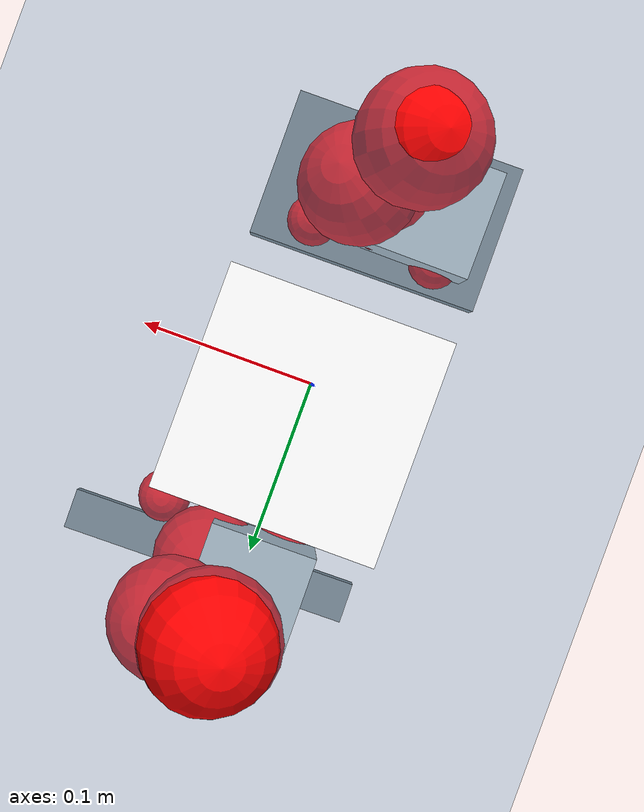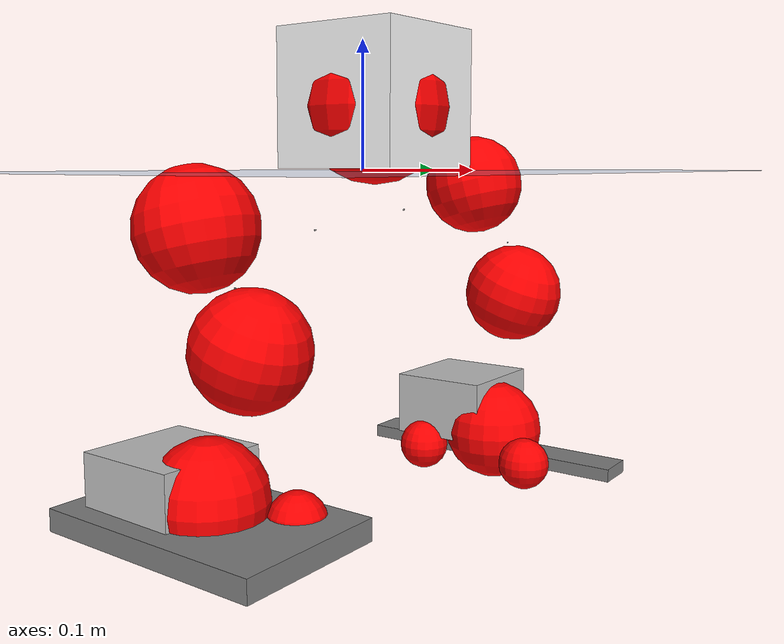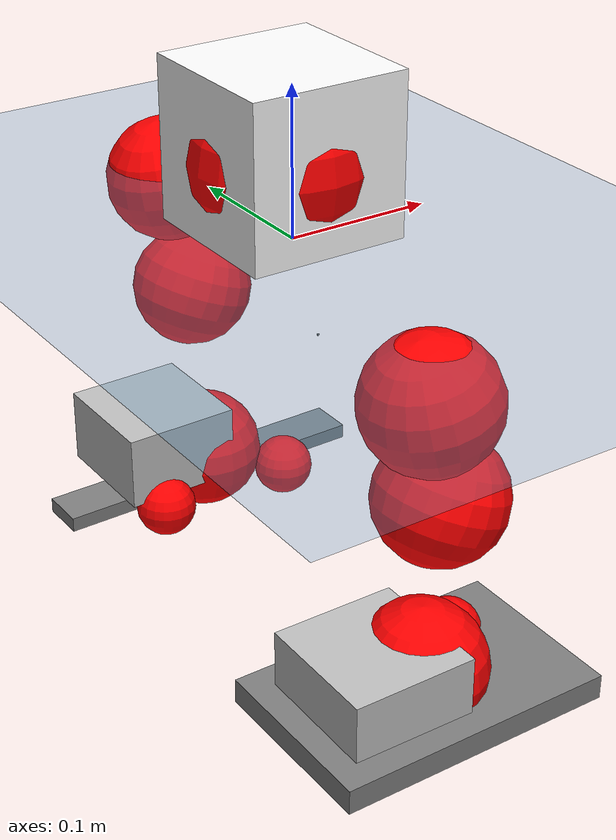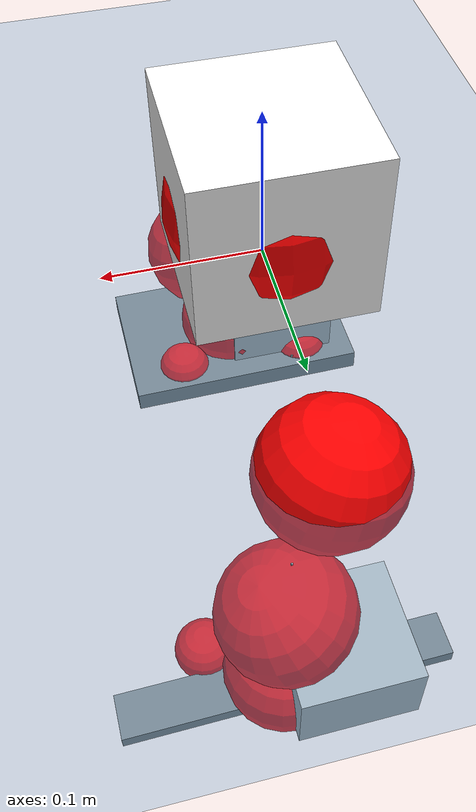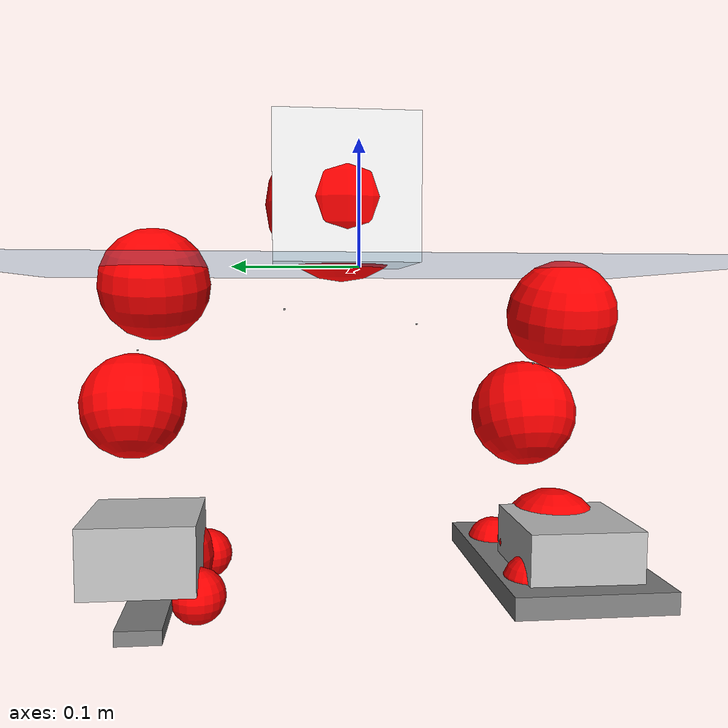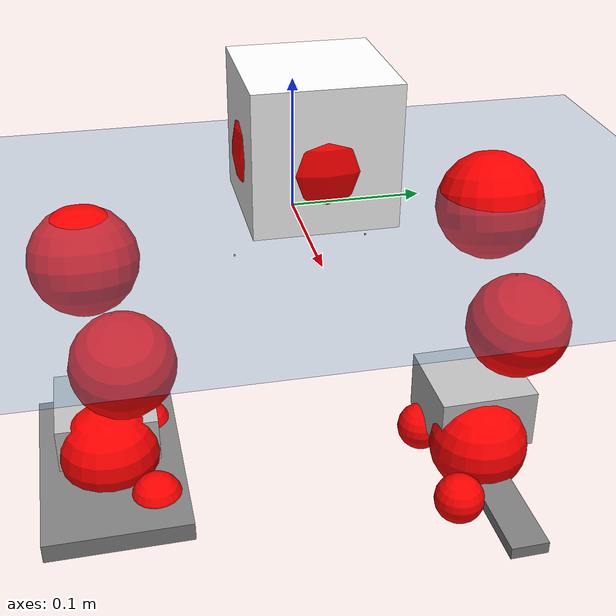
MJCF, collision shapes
<mujoco model="pi_12dof_release_v1">
  <compiler angle="radian" assetdir="assets" balanceinertia="true" inertiafromgeom="false"/>

  <option timestep="0.005" density="1.2" viscosity="2e-05"/>

  <size nkey="1"/>

  <visual>
    <quality shadowsize="8192"/>
    <map shadowclip="0.5"/>
  </visual>

  <default>
    <default class="/">
      <joint armature="0.01" damping="0.01" frictionloss="0.01"/>
      <geom contype="0" conaffinity="0" group="1" solref="-1000 -80"/>
      <site size="0.01 0.005 0.005" group="5"/>
      <general forcelimited="true" biastype="affine" gainprm="20" biasprm="0 -20 -0.5"/>
      <default class="foot">
        <geom size="0.0845 0.036 0.005" type="box" condim="6" group="4" priority="1" friction="0.9 0.2 0.2" solimp="0.015 1 0.005"/>
      </default>
      <default class="reward_collision_sphere">
        <geom group="5" rgba="1 0 0 1"/>
      </default>
    </default>
  </default>

  <asset>
    <texture type="skybox" colorspace="auto" name="//unnamed_texture_0" builtin="gradient" rgb1="0.95 0.95 0.95" rgb2="0.95 0.95 0.95" width="100" height="600"/>
    <texture type="2d" colorspace="auto" name="texplane" builtin="checker" rgb1="0.345 0.575 0.748" rgb2="0.345 0.575 0.748" markrgb="1 1 1" width="512" height="512"/>
    <material name="MatPlane" class="/" texture="texplane" texuniform="true" texrepeat="2 2" specular="0.9"/>
    <mesh name="baselink_1" class="/" file="baselink_1.STL"/>
    <mesh name="r_hip_pitch_link" class="/" file="r_hip_pitch_link.STL"/>
    <mesh name="r_hip_roll_link" class="/" file="r_hip_roll_link.STL"/>
    <mesh name="r_thigh_link" class="/" file="r_thigh_link.STL"/>
    <mesh name="r_calf_link" class="/" file="r_calf_link.STL"/>
    <mesh name="r_ankle_pitch_link" class="/" file="r_ankle_pitch_link.STL"/>
    <mesh name="r_ankle_roll_link" class="/" file="r_ankle_roll_link.STL"/>
    <mesh name="l_hip_pitch_link" class="/" file="l_hip_pitch_link.STL"/>
    <mesh name="l_hip_roll_link" class="/" file="l_hip_roll_link.STL"/>
    <mesh name="l_thigh_link" class="/" file="l_thigh_link.STL"/>
    <mesh name="l_calf_link" class="/" file="l_calf_link.STL"/>
    <mesh name="l_ankle_pitch_link" class="/" file="l_ankle_pitch_link.STL"/>
    <mesh name="l_ankle_roll_link" class="/" file="l_ankle_roll_link.STL"/>
  </asset>

  <worldbody>
    <geom name="floor" class="/" size="100 100 0.125" type="plane" group="0" material="MatPlane"/>
    <light name="toplight_shadow" class="/" pos="0 0 5" dir="0.0990148 0.0990148 -0.990148" type="directional" ambient="0.04 0.04 0.04" diffuse="0.55 0.55 0.55" specular="0.12 0.12 0.12"/>
    <light name="toplight_fill" class="/" pos="0 0 5" dir="0.0990148 0.0990148 -0.990148" type="directional" castshadow="false" ambient="0.04 0.04 0.04" diffuse="0.3 0.3 0.3" specular="0.08 0.08 0.08"/>
    <body name="trunk" pos="0.00139324 0.0139007 -0.0042071" quat="1 0.00011866 -6.78482e-05 -0.000169632">
      <inertial pos="-0.00587855 0.0145555 0.0332676" quat="0.644232 0.0409279 -0.0465454 0.762314" mass="2.77582" diaginertia="0.00283341 0.169208 0.000976588"/>
      <joint name="//unnamed_joint_0" type="free"/>
      <geom name="//unnamed_geom_1" class="/" type="mesh" density="0" rgba="1 1 1 1" mesh="baselink_1"/>
      <geom name="//unnamed_geom_2" class="/" size="0.0542123 0.0542123 0.0542123" pos="0 0 0.059995" type="box" rgba="1 1 1 1"/>
      <geom name="//unnamed_geom_3" class="reward_collision_sphere" size="0.0596335" pos="0 0 0.0524956"/>
      <site name="imu" class="/" pos="-0.0678172 -0.0558746 0.0694225" size="0.0108425"/>
      <camera name="track" class="/" pos="0 -3.47929 0" quat="0.707107 0.707107 0 0" mode="trackcom"/>
      <camera name="ego_camera" class="/" pos="0.0572367 0 0.134989" quat="-0.5 -0.5 0.5 0.5"/>
      <body name="r_hip_pitch_link" pos="-0.0123746 -0.0586551 -0.0405876" quat="0.992658 -0.00595146 -0.120805 0.000911207">
        <inertial pos="0.00602942 -0.0959061 -0.0105567" quat="-0.0361452 0.711317 -0.0402915 0.700784" mass="0.571157" diaginertia="2.73268e-05 0.0016983 1.87253e-05"/>
        <joint name="r_hip_pitch_joint" class="/" pos="0 0 0" axis="-0.0315003 -0.999037 0.0305281" stiffness="0.0153544" range="-1.77101 1.46892" armature="0.00941559" damping="0.0124555" frictionloss="0.0145975"/>
        <geom name="//unnamed_geom_4" class="/" type="mesh" density="0" rgba="0.75294 0.75294 0.75294 1" mesh="r_hip_pitch_link"/>
        <geom name="//unnamed_geom_5" class="/" size="0.000542123 0.000542123 0.000542123" type="box" rgba="0.75294 0.75294 0.75294 1"/>
        <body name="r_hip_roll_link" pos="-0.00138922 -0.117023 0.00614204" quat="0.999979 0.00551736 -0.00340761 -0.000136803">
          <inertial pos="-0.0143403 -0.0111826 -0.0509834" quat="0.734994 -0.078809 -0.14075 0.658606" mass="0.493239" diaginertia="7.83596e-05 0.00421424 3.20197e-05"/>
          <joint name="r_hip_roll_joint" class="/" pos="0 0 0" axis="-0.998131 0.0469432 -0.0391164" range="-0.0696896 0.205019" armature="0.0181435" damping="0.114213" frictionloss="0.0128438"/>
          <geom name="//unnamed_geom_6" class="/" type="mesh" density="0" rgba="0.75294 0.75294 0.75294 1" mesh="r_hip_roll_link"/>
          <geom name="//unnamed_geom_7" class="/" size="0.000542123 0.000542123 0.000542123" type="box" rgba="0.75294 0.75294 0.75294 1"/>
          <geom name="//unnamed_geom_8" class="reward_collision_sphere" size="0.0433698"/>
          <body name="r_thigh_link" pos="0.0077728 0.0163906 -0.0432173" quat="0.999986 -0.00365314 -0.000228893 -0.00391995">
            <inertial pos="-0.0121977 0.00214417 -0.0179715" quat="0.734595 0.678484 -0.000339643 0.00541615" mass="0.149586" diaginertia="3.71759e-05 0.00116703 1.63906e-05"/>
            <joint name="r_thigh_joint" class="/" pos="0 0 0" axis="-0.00337671 -0.00761386 -0.999965" stiffness="0.0570538" range="-0.0446981 0.548735" armature="0.0157986" damping="0" frictionloss="0.00977799"/>
            <geom name="//unnamed_geom_9" class="/" type="mesh" density="0" rgba="0.75294 0.75294 0.75294 1" mesh="r_thigh_link"/>
            <geom name="//unnamed_geom_10" class="/" size="0.000542123 0.000542123 0.000542123" type="box" rgba="0.75294 0.75294 0.75294 1"/>
            <body name="r_calf_link" pos="-0.00193123 0.00536443 -0.043335" quat="0.947735 8.72468e-05 0.319059 -0.000193336">
              <inertial pos="0.00837981 -0.00858963 -0.0590214" quat="0.999744 -0.0191423 -0.00326143 0.0115794" mass="1.17431" diaginertia="0.000949276 0.0651775 3.229e-05"/>
              <joint name="r_calf_joint" class="/" pos="0 0 0" axis="0.0393804 -0.998447 0.0394081" stiffness="0.0515653" range="-2.0188 0.435414" armature="0.014681" damping="0.00676912" frictionloss="0.00523813"/>
              <geom name="//unnamed_geom_11" class="/" type="mesh" density="0" rgba="0.75294 0.75294 0.75294 1" mesh="r_calf_link"/>
              <geom name="//unnamed_geom_12" class="/" size="0.000542123 0.000542123 0.000542123" type="box" rgba="0.75294 0.75294 0.75294 1"/>
              <geom name="//unnamed_geom_13" class="reward_collision_sphere" size="0.0433698"/>
              <body name="r_ankle_pitch_link" pos="-0.0163765 -0.0179315 -0.116234" quat="0.979541 0.00418489 -0.201194 0.00145268">
                <inertial pos="0.0138556 0.0240282 0.00357875" quat="0.0187734 0.742438 -0.0225295 0.669273" mass="0.153258" diaginertia="6.17365e-05 0.00285076 2.57655e-05"/>
                <joint name="r_ankle_pitch_joint" class="/" pos="0 0 0" axis="-0.0380133 -0.99648 0.0747151" range="-1.50083 0.16904" armature="0.00915107" damping="0" frictionloss="0.0155321"/>
                <geom name="//unnamed_geom_14" class="/" type="mesh" density="0" rgba="0.75294 0.75294 0.75294 1" mesh="r_ankle_pitch_link"/>
                <geom name="//unnamed_geom_15" class="/" size="0.0422856 0.0433698 0.0271061" type="box" rgba="0.75294 0.75294 0.75294 1"/>
                <body name="r_ankle_roll_link" pos="0.0743775 0.000932324 0.011716" quat="0.999971 0.00212056 0.00431548 0.00591798">
                  <inertial pos="-0.0269253 -0.000688821 -0.0235401" quat="0.520409 0.448536 0.473191 0.551435" mass="0.628121" diaginertia="0.000269465 0.0162583 6.06333e-05"/>
                  <joint name="r_ankle_roll_joint" class="/" pos="0 0 0" axis="-0.999975 -0.000141135 -0.00703683" range="0.198936 0.112684" armature="0.0115032" damping="0.0343575" frictionloss="0.0165454"/>
                  <geom name="//unnamed_geom_16" class="/" type="mesh" density="0" rgba="0.75294 0.75294 0.75294 1" mesh="r_ankle_roll_link"/>
                  <geom name="//unnamed_geom_17" class="/" type="mesh" rgba="0.75294 0.75294 0.75294 1" mesh="r_ankle_roll_link"/>
                  <geom name="right_foot" class="foot" size="0.0951696 0.0606609 0.00836358" pos="-0.0389209 0 -0.0329972"/>
                  <geom name="//unnamed_geom_19" class="reward_collision_sphere" size="0.0433698" pos="-0.0381578 0 -0.0149987"/>
                  <geom name="//unnamed_geom_20" class="reward_collision_sphere" size="0.0216849" pos="0.0114473 0.0347929 -0.0299975"/>
                  <geom name="//unnamed_geom_21" class="reward_collision_sphere" size="0.0216849" pos="-0.0915786 0.0347929 -0.0299975"/>
                  <site name="right_foot" class="foot" pos="-0.0389209 0 -0.0329972" size="0.0108425"/>
                </body>
              </body>
            </body>
          </body>
        </body>
      </body>
      <body name="l_hip_pitch_link" pos="-0.00445585 0.0455261 -0.0288176" quat="0.992151 0.00118561 -0.124979 0.00396947">
        <inertial pos="-0.000973372 0.109286 -0.0110868" quat="-0.0066387 0.704893 0.00938741 0.70922" mass="0.396919" diaginertia="2.89628e-05 0.00146793 2.15223e-05"/>
        <joint name="l_hip_pitch_joint" class="/" pos="0 0 0" axis="-0.00339373 0.999994 -0.000295755" range="-1.22341 1.80654" armature="0.013365" damping="0.0787696" frictionloss="0.00407091"/>
        <geom name="//unnamed_geom_22" class="/" type="mesh" density="0" rgba="0.75294 0.75294 0.75294 1" mesh="l_hip_pitch_link"/>
        <geom name="//unnamed_geom_23" class="/" size="0.000542123 0.000542123 0.000542123" type="box" rgba="0.75294 0.75294 0.75294 1"/>
        <body name="l_hip_roll_link" pos="0.0118413 0.100432 0.0167893" quat="0.999995 0.00119673 -0.0018837 0.00231518">
          <inertial pos="-0.00291588 0.00475225 -0.0286807" quat="0.717856 -0.0297734 -0.0529201 0.693538" mass="0.340171" diaginertia="8.37457e-05 0.00348163 2.85948e-05"/>
          <joint name="l_hip_roll_joint" class="/" pos="0 0 0" axis="-0.997495 0.0664583 0.0242331" range="-0.165157 0.136639" armature="0.002984" damping="0" frictionloss="0.00610749"/>
          <geom name="//unnamed_geom_24" class="/" type="mesh" density="0" rgba="0.75294 0.75294 0.75294 1" mesh="l_hip_roll_link"/>
          <geom name="//unnamed_geom_25" class="/" size="0.000542123 0.000542123 0.000542123" type="box" rgba="0.75294 0.75294 0.75294 1"/>
          <geom name="//unnamed_geom_26" class="reward_collision_sphere" size="0.0433698"/>
          <body name="l_thigh_link" pos="0.0114912 0.0182085 -0.0576728" quat="0.999994 -0.00136103 -0.000447572 -0.00309901">
            <inertial pos="0.00417651 -0.00329228 -0.0305337" quat="0.678012 0.734862 -0.0125657 0.0109047" mass="0.104792" diaginertia="2.23332e-05 0.00134484 1.16507e-05"/>
            <joint name="l_thigh_joint" class="/" pos="0 0 0" axis="-0.00372608 0.0106031 -0.999937" range="-0.706406 0.269489" armature="0.0169296" damping="0.0196521" frictionloss="0.0112659"/>
            <geom name="//unnamed_geom_27" class="/" type="mesh" density="0" rgba="0.75294 0.75294 0.75294 1" mesh="l_thigh_link"/>
            <geom name="//unnamed_geom_28" class="/" size="0.000542123 0.000542123 0.000542123" type="box" rgba="0.75294 0.75294 0.75294 1"/>
            <body name="l_calf_link" pos="-0.00792016 0.00487778 -0.0454978" quat="0.947774 -0.00274436 0.318852 0.00707563">
              <inertial pos="-0.00701207 -0.00831377 -0.039984" quat="0.999249 0.0155591 -0.0249844 0.0251827" mass="0.855613" diaginertia="0.000650146 0.0426907 2.82872e-05"/>
              <joint name="l_calf_joint" class="/" pos="0 0 0" axis="0.0224866 0.998118 0.0570576" stiffness="0.0414013" range="-0.782987 1.83482" armature="0.00714896" damping="0" frictionloss="0.00628165"/>
              <geom name="//unnamed_geom_29" class="/" type="mesh" density="0" rgba="0.75294 0.75294 0.75294 1" mesh="l_calf_link"/>
              <geom name="//unnamed_geom_30" class="/" size="0.000542123 0.000542123 0.000542123" type="box" rgba="0.75294 0.75294 0.75294 1"/>
              <geom name="//unnamed_geom_31" class="reward_collision_sphere" size="0.0433698"/>
              <body name="l_ankle_pitch_link" pos="-0.001959 -0.0129376 -0.114028" quat="0.980211 0.00619026 -0.197799 -0.00491236">
                <inertial pos="0.00323618 0.0147191 -0.0114873" quat="0.00874004 0.72356 0.0211291 0.689883" mass="0.246139" diaginertia="8.64629e-05 0.0039002 3.27468e-05"/>
                <joint name="l_ankle_pitch_joint" class="/" pos="0 0 0" axis="-0.00237178 0.999985 0.00502175" stiffness="0.0428666" range="-0.223392 1.06299" armature="0.00840498" damping="0" frictionloss="0.011148"/>
                <geom name="//unnamed_geom_32" class="/" type="mesh" density="0" rgba="0.75294 0.75294 0.75294 1" mesh="l_ankle_pitch_link"/>
                <geom name="//unnamed_geom_33" class="/" size="0.0422856 0.0433698 0.0271061" type="box" rgba="0.75294 0.75294 0.75294 1"/>
                <body name="l_ankle_roll_link" pos="0.0763779 -0.00674624 -0.00570919" quat="0.999988 0.00293496 0.00190894 0.00350917">
                  <inertial pos="-0.0366699 -7.00014e-05 -0.0033193" quat="0.539606 0.458442 0.410901 0.574297" mass="0.673468" diaginertia="0.00022753 0.0175309 6.03392e-05"/>
                  <joint name="l_ankle_roll_joint" class="/" pos="0 0 0" axis="-0.996031 -0.0501327 0.0735462" stiffness="0.0466715" range="-0.506181 0.423566" armature="0.00261695" damping="0" frictionloss="0.0190352"/>
                  <geom name="//unnamed_geom_34" class="/" type="mesh" density="0" rgba="0.75294 0.75294 0.75294 1" mesh="l_ankle_roll_link"/>
                  <geom name="//unnamed_geom_35" class="/" type="mesh" rgba="0.75294 0.75294 0.75294 1" mesh="l_ankle_roll_link"/>
                  <geom name="left_foot" class="foot" size="0.119776 0.0162778 0.00537915" pos="-0.0389209 0 -0.0329972"/>
                  <geom name="//unnamed_geom_37" class="reward_collision_sphere" size="0.0433698" pos="-0.0381578 0 -0.0149987"/>
                  <geom name="//unnamed_geom_38" class="reward_collision_sphere" size="0.0216849" pos="0.0114473 -0.0347929 -0.0299975"/>
                  <geom name="//unnamed_geom_39" class="reward_collision_sphere" size="0.0216849" pos="-0.0915786 -0.0347929 -0.0299975"/>
                  <site name="left_foot" class="foot" pos="-0.0389209 0 -0.0329972" size="0.0108425"/>
                </body>
              </body>
            </body>
          </body>
        </body>
      </body>
    </body>
  </worldbody>

  <contact>
    <pair class="/" geom1="floor" geom2="right_foot" name="//unnamed_contact_1"/>
    <pair class="/" geom1="floor" geom2="left_foot" name="//unnamed_contact_0"/>
  </contact>

  <actuator>
    <general name="r_hip_pitch_joint" class="/" joint="r_hip_pitch_joint" forcerange="-28.9571 28.9571" gainprm="27.9123" biasprm="0 -27.9123 -0.651233"/>
    <general name="r_hip_roll_joint" class="/" joint="r_hip_roll_joint" forcerange="-22.0643 22.0643" gainprm="27.9123" biasprm="0 -27.9123 -0.651233"/>
    <general name="r_thigh_joint" class="/" joint="r_thigh_joint" forcerange="-12.0775 12.0775" gainprm="27.9123" biasprm="0 -27.9123 -0.651233"/>
    <general name="r_calf_joint" class="/" joint="r_calf_joint" forcerange="-36.0654 36.0654" gainprm="27.9123" biasprm="0 -27.9123 -0.651233"/>
    <general name="r_ankle_pitch_joint" class="/" joint="r_ankle_pitch_joint" forcerange="-8.58027 8.58027" gainprm="27.9123" biasprm="0 -27.9123 -0.651233"/>
    <general name="r_ankle_roll_joint" class="/" joint="r_ankle_roll_joint" forcerange="-8.50332 8.50332" gainprm="27.9123" biasprm="0 -27.9123 -0.651233"/>
    <general name="l_hip_pitch_joint" class="/" joint="l_hip_pitch_joint" forcerange="-7.13262 7.13262" gainprm="27.9123" biasprm="0 -27.9123 -0.651233"/>
    <general name="l_hip_roll_joint" class="/" joint="l_hip_roll_joint" forcerange="-33.4737 33.4737" gainprm="27.9123" biasprm="0 -27.9123 -0.651233"/>
    <general name="l_thigh_joint" class="/" joint="l_thigh_joint" forcerange="-29.42 29.42" gainprm="27.9123" biasprm="0 -27.9123 -0.651233"/>
    <general name="l_calf_joint" class="/" joint="l_calf_joint" forcerange="-8.5647 8.5647" gainprm="27.9123" biasprm="0 -27.9123 -0.651233"/>
    <general name="l_ankle_pitch_joint" class="/" joint="l_ankle_pitch_joint" forcerange="-8.53454 8.53454" gainprm="27.9123" biasprm="0 -27.9123 -0.651233"/>
    <general name="l_ankle_roll_joint" class="/" joint="l_ankle_roll_joint" forcerange="-12.2333 12.2333" gainprm="27.9123" biasprm="0 -27.9123 -0.651233"/>
  </actuator>

  <sensor>
    <gyro site="imu" name="imu_angular_velocity"/>
    <velocimeter site="imu" name="imu_linear_velocity"/>
    <framelinvel objtype="site" objname="left_foot" name="left_foot_global_linear_velocity"/>
    <framelinvel objtype="site" objname="right_foot" name="right_foot_global_linear_velocity"/>
  </sensor>

  <keyframe>
    <key name="home" qpos="0 0 0.291 1 0 0 0 0.4 0 0 -0.8 0.4 0 -0.4 0 0 0.8 -0.4 0"/>
  </keyframe>
</mujoco>
